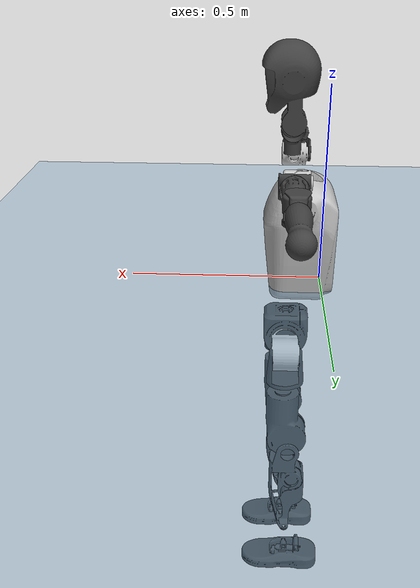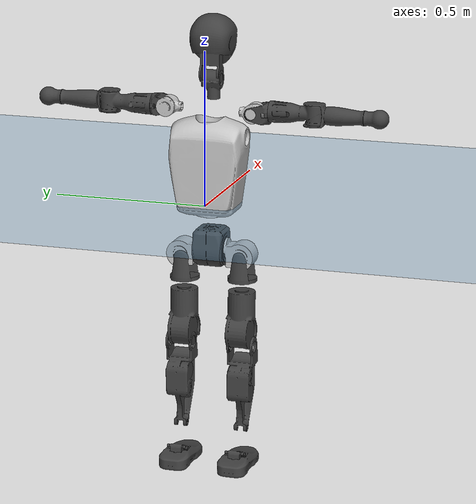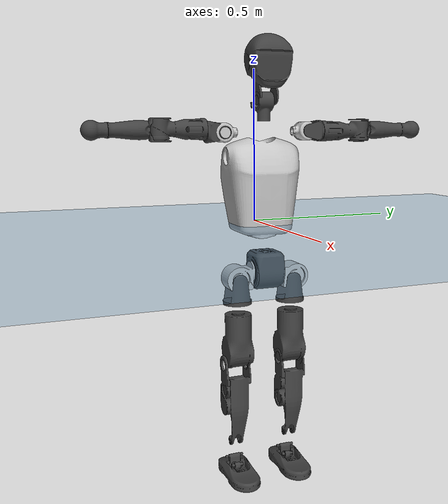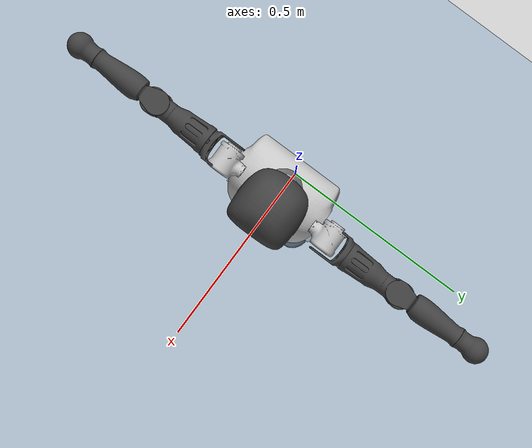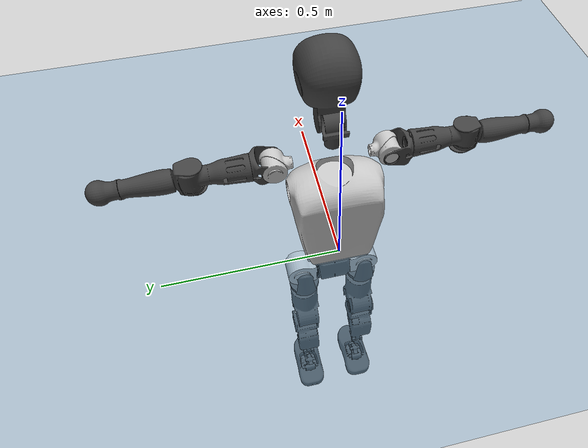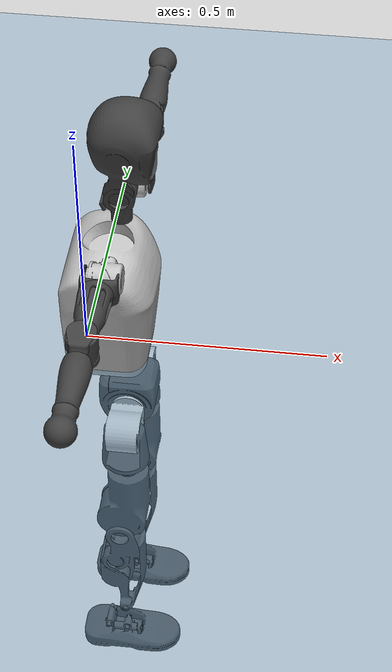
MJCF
<mujoco model="T1">
  <compiler angle="radian" assetdir="assets" balanceinertia="true" inertiafromgeom="false"/>

  <option timestep="0.005" density="1.2" viscosity="2e-05"/>

  <size nkey="1"/>

  <visual>
    <quality shadowsize="8192"/>
    <map shadowclip="0.5"/>
  </visual>

  <default>
    <default class="/">
      <joint armature="0.01" damping="0.01" frictionloss="0.1"/>
      <geom contype="0" conaffinity="0" group="1" solref="-1000 -80"/>
      <site size="0.01 0.005 0.005" group="5"/>
      <general forcelimited="true" biastype="affine" gainprm="25" biasprm="0 -25 -0.6"/>
      <default class="t1">
        <geom rgba="0.25 0.25 0.25 1"/>
        <default class="visual">
          <geom type="mesh" group="2"/>
        </default>
        <default class="collision">
          <geom group="3"/>
        </default>
        <default class="foot">
          <geom size="0.1115 0.05 0.015" type="box" condim="6" group="4" priority="1" solimp="0.015 1 0.015"/>
        </default>
        <default class="reward_collision_sphere">
          <geom group="5" rgba="1 0 0 1"/>
        </default>
      </default>
    </default>
  </default>

  <asset>
    <texture type="skybox" colorspace="auto" name="//unnamed_texture_0" builtin="gradient" rgb1="0.95 0.95 0.95" rgb2="0.95 0.95 0.95" width="100" height="600"/>
    <texture type="2d" colorspace="auto" name="texplane" builtin="checker" rgb1="0.345 0.575 0.748" rgb2="0.345 0.575 0.748" markrgb="1 1 1" width="512" height="512"/>
    <material name="MatPlane" class="/" texture="texplane" texuniform="true" texrepeat="2 2" specular="0.9"/>
    <mesh name="Trunk" class="/" file="Trunk.stl"/>
    <mesh name="H1" class="/" file="H1.stl"/>
    <mesh name="H2" class="/" file="H2.stl"/>
    <mesh name="AL1" class="/" file="AL1.stl"/>
    <mesh name="AL2" class="/" file="AL2.stl"/>
    <mesh name="AL3" class="/" file="AL3.stl"/>
    <mesh name="left_hand_link" class="/" file="left_hand_link.stl"/>
    <mesh name="AR1" class="/" file="AR1.stl"/>
    <mesh name="AR2" class="/" file="AR2.stl"/>
    <mesh name="AR3" class="/" file="AR3.stl"/>
    <mesh name="right_hand_link" class="/" file="right_hand_link.stl"/>
    <mesh name="Waist" class="/" file="Waist.stl"/>
    <mesh name="Hip_Pitch_Left" class="/" file="Hip_Pitch_Left.stl"/>
    <mesh name="Hip_Roll_Left" class="/" file="Hip_Roll_Left.stl"/>
    <mesh name="Hip_Yaw_Left" class="/" file="Hip_Yaw_Left.stl"/>
    <mesh name="Shank_Left" class="/" file="Shank_Left.stl"/>
    <mesh name="Ankle_Cross_Left" class="/" file="Ankle_Cross_Left.stl"/>
    <mesh name="left_foot_link" class="/" file="left_foot_link.stl"/>
    <mesh name="Hip_Pitch_Right" class="/" file="Hip_Pitch_Right.stl"/>
    <mesh name="Hip_Roll_Right" class="/" file="Hip_Roll_Right.stl"/>
    <mesh name="Hip_Yaw_Right" class="/" file="Hip_Yaw_Right.stl"/>
    <mesh name="Shank_Right" class="/" file="Shank_Right.stl"/>
    <mesh name="Ankle_Cross_Right" class="/" file="Ankle_Cross_Right.stl"/>
    <mesh name="right_foot_link" class="/" file="right_foot_link.stl"/>
  </asset>

  <worldbody>
    <geom name="floor" class="/" size="100 100 0.125" type="plane" group="0" material="MatPlane"/>
    <light name="toplight_shadow" class="/" pos="0 0 5" dir="0.0990148 0.0990148 -0.990148" type="directional" ambient="0.04 0.04 0.04" diffuse="0.55 0.55 0.55" specular="0.12 0.12 0.12"/>
    <light name="toplight_fill" class="/" pos="0 0 5" dir="0.0990148 0.0990148 -0.990148" type="directional" castshadow="false" ambient="0.04 0.04 0.04" diffuse="0.3 0.3 0.3" specular="0.08 0.08 0.08"/>
    <body name="trunk" childclass="t1" pos="0.00017324 0.000851216 0.00201267" quat="0.999999 0.00133197 0.000323805 -0.000974827">
      <inertial pos="0.073396 -0.000706158 0.139543" quat="0.99983 -0.0147409 -0.00787483 -0.00783443" mass="20.0111" diaginertia="0.307963 0.0521192 0.218197"/>
      <joint name="//unnamed_joint_0" type="free" armature="0" damping="0" frictionloss="0"/>
      <geom name="//unnamed_geom_1" class="visual" rgba="0.76 0.76 0.76 1" mesh="Trunk"/>
      <geom name="//unnamed_geom_2" class="collision" size="0.089474 0.119299 0.178948" pos="0.0790013 0 0.160195" type="box"/>
      <geom name="//unnamed_geom_3" class="reward_collision_sphere" size="0.137194" pos="0.0790013 0 0.133496"/>
      <geom name="//unnamed_geom_4" class="reward_collision_sphere" size="0.0178948" pos="0.0790013 0.078822 0"/>
      <geom name="//unnamed_geom_5" class="reward_collision_sphere" size="0.0178948" pos="0.0790013 -0.078822 0"/>
      <geom name="//unnamed_geom_6" class="reward_collision_sphere" size="0.0178948" pos="0.0790013 0.099223 0.240292"/>
      <geom name="//unnamed_geom_7" class="reward_collision_sphere" size="0.0178948" pos="0.0790013 -0.099223 0.240292"/>
      <site name="imu" pos="-0.0151849 0.000903961 0.0144491" size="0.0119299"/>
      <camera name="track" pos="0 -1.85463 0" quat="0.707107 0.707107 0 0" mode="trackcom"/>
      <camera name="ego_camera" pos="0.160636 0 0.560681" quat="-0.5 -0.5 0.5 0.5"/>
      <body name="H1" pos="0.0861741 -0.00103214 0.330611" quat="1 -8.99131e-05 -0.000159391 0.000393403">
        <inertial pos="-0.00275241 -0.00402145 0.0766749" quat="0.766057 -0.0128071 0.00176572 0.642643" mass="0.760696" diaginertia="0.000958419 0.000152892 0.000639021"/>
        <joint name="AAHead_yaw" pos="0 0 0" axis="0.0115717 0.000460715 0.999933" range="-1.62961 1.60632" armature="0.00824298" damping="0.0150639" frictionloss="0.0859077"/>
        <geom name="//unnamed_geom_8" class="visual" mesh="H1"/>
        <body name="H2" pos="-0.000351514 0.00816446 0.0808149" quat="1 -2.06026e-06 -0.000211678 -4.48941e-05">
          <inertial pos="0.00594448 0.00560948 0.138884" quat="0.988456 0.0976826 -0.0921624 -0.0701345" mass="1.09522" diaginertia="0.00848927 0.00147723 0.00748039"/>
          <joint name="Head_pitch" pos="0 0 0" axis="-0.0032695 -0.999991 -0.00277874" range="-1.1878 0.321695" armature="0.0108338" damping="0.0363503" frictionloss="0.132767"/>
          <geom name="//unnamed_geom_9" class="visual" mesh="H2"/>
          <geom name="//unnamed_geom_10" class="collision" size="0.095439" pos="0.0131669 0 0.146845"/>
          <geom name="//unnamed_geom_11" class="reward_collision_sphere" size="0.107369" pos="0.0263338 0 0.133496"/>
        </body>
      </body>
      <body name="AL1" pos="0.0790179 0.102103 0.298459" quat="0.999996 0.00123243 -0.00267923 -0.000195406">
        <inertial pos="0.00115864 0.0433385 -0.0020956" quat="0.5056 0.495568 -0.50493 0.493788" mass="0.908159" diaginertia="0.00549092 0.000974494 0.00133217"/>
        <joint name="Left_Shoulder_Pitch" pos="0 0 0" axis="0.0149288 0.999883 -0.00323476" range="-3.27903 1.08668" armature="0.011743" damping="0.0381436" frictionloss="0.113058"/>
        <geom name="//unnamed_geom_12" class="visual" rgba="0.76 0.76 0.76 1" mesh="AL1"/>
        <body name="AL2" pos="0.00584772 0.0444395 0.00051294" quat="1 -5.21497e-05 0.000409459 -5.5377e-06">
          <inertial pos="0.00526947 0.0291861 0.000718255" quat="0.484139 0.520297 -0.482177 0.512255" mass="0.258053" diaginertia="0.00157628 0.000236887 0.000742553"/>
          <joint name="Left_Shoulder_Roll" pos="0 0 0" axis="-0.999906 0.00922468 -0.0101568" stiffness="0.038352" range="-1.58734 1.77421" armature="0.00790476" damping="0.0148679" frictionloss="0.115763"/>
          <geom name="//unnamed_geom_13" class="visual" mesh="AL2"/>
          <body name="AL3" pos="0.00130434 0.056002 -0.00138365" quat="1 -0.000873351 0.000122797 0.000347014">
            <inertial pos="-0.00521022 0.0853083 7.8441e-05" quat="0.705065 0.709113 0.00128234 0.00642217" mass="1.94665" diaginertia="0.0503055 0.00933422 0.00287809"/>
            <joint name="Left_Elbow_Pitch" pos="0 0 0" axis="0.000997355 -0.999998 -0.00168917" range="-2.13268 2.26381" armature="0.00708407" damping="0" frictionloss="0.110675"/>
            <geom name="//unnamed_geom_14" class="visual" mesh="AL3"/>
            <geom name="//unnamed_geom_15" class="collision" size="0.0357896 0.089474" pos="0 0.0463659 0" quat="0.707105 0.707108 0 0" type="cylinder"/>
            <geom name="//unnamed_geom_16" class="reward_collision_sphere" size="0.0429475"/>
            <body name="left_hand_link" pos="-0.00144607 0.138838 0.00229031" quat="0.999994 -0.000403159 -0.00327839 -0.000370394">
              <inertial pos="0.00688109 0.101794 0.0015296" quat="0.711729 0.702426 -0.00563901 0.00279732" mass="0.55744" diaginertia="0.0347242 0.00563122 0.000857193"/>
              <joint name="Left_Elbow_Yaw" pos="0 0 0" axis="-0.00155237 -0.00247038 0.999996" stiffness="0.00434638" range="-2.46752 0.143317" armature="0.0104811" damping="0.00886287" frictionloss="0.12474"/>
              <geom name="//unnamed_geom_17" class="visual" mesh="left_hand_link"/>
              <geom name="//unnamed_geom_18" class="collision" size="0.0357896 0.104386" pos="0 0.120551 0" quat="0.707105 0.707108 0 0" type="cylinder"/>
              <geom name="//unnamed_geom_19" class="reward_collision_sphere" size="0.0596493"/>
              <geom name="//unnamed_geom_20" class="reward_collision_sphere" size="0.0417545" pos="0 0.102005 0"/>
              <geom name="//unnamed_geom_21" class="reward_collision_sphere" size="0.0417545" pos="0 0.199373 0"/>
            </body>
          </body>
        </body>
      </body>
      <body name="AR1" pos="0.0758624 -0.0925603 0.295414" quat="1 4.33035e-05 0.000412958 -0.000184285">
        <inertial pos="0.00129263 -0.0337559 -0.0014869" quat="0.50166 0.4895 -0.507195 0.501478" mass="0.965684" diaginertia="0.0057701 0.000916982 0.00131742"/>
        <joint name="Right_Shoulder_Pitch" pos="0 0 0" axis="-0.0237664 -0.999717 -0.00112767" stiffness="0.0374512" range="-1.21439 3.33019" armature="0.00893363" damping="0" frictionloss="0.122487"/>
        <geom name="//unnamed_geom_22" class="visual" rgba="0.76 0.76 0.76 1" mesh="AR1"/>
        <body name="AR2" pos="-0.00719666 -0.0455531 0.00173745" quat="0.999996 -0.00263572 0.000899855 -0.000358181">
          <inertial pos="0.00736466 -0.0330355 -0.00030088" quat="0.511869 0.488801 -0.511096 0.487693" mass="0.292406" diaginertia="0.00159705 0.00022092 0.000734919"/>
          <joint name="Right_Shoulder_Roll" pos="0 0 0" axis="-0.999978 -0.0056312 0.00349875" range="-1.72696 1.58958" armature="0.0122303" damping="0.00530518" frictionloss="0.0716234"/>
          <geom name="//unnamed_geom_23" class="visual" mesh="AR2"/>
          <body name="AR3" pos="-0.00191687 -0.0553855 0.00817918" quat="1 0.000484924 -4.14004e-05 0.000153635">
            <inertial pos="0.00188211 -0.0733965 0.000106429" quat="0.690943 0.722861 -0.00619605 0.00561679" mass="1.7244" diaginertia="0.0506996 0.00856678 0.00246061"/>
            <joint name="Right_Elbow_Pitch" pos="0 0 0" axis="-0.0244396 0.999659 -0.00925096" range="-2.16538 2.30227" armature="0.0156149" damping="0.0180525" frictionloss="0.105437"/>
            <geom name="//unnamed_geom_24" class="visual" mesh="AR3"/>
            <geom name="//unnamed_geom_25" class="collision" size="0.0357896 0.089474" pos="0 -0.0463659 0" quat="0.707105 0.707108 0 0" type="cylinder"/>
            <geom name="//unnamed_geom_26" class="reward_collision_sphere" size="0.0429475"/>
            <body name="right_hand_link" pos="-0.00121953 -0.137863 -0.00191674" quat="0.999998 0.00150673 0.00139171 -0.000548183">
              <inertial pos="0.00221134 -0.101141 -0.00505973" quat="0.706381 0.707832 0.000119063 -0.000460525" mass="0.54498" diaginertia="0.0316663 0.0057626 0.000919866"/>
              <joint name="Right_Elbow_Yaw" pos="0 0 0" axis="-0.00959322 -0.00613844 0.999935" stiffness="0.00545899" range="-0.0372929 2.39305" armature="0.00860788" damping="0.04375" frictionloss="0.0999349"/>
              <geom name="//unnamed_geom_27" class="visual" mesh="right_hand_link"/>
              <geom name="//unnamed_geom_28" class="collision" size="0.0357896 0.104386" pos="0 -0.120551 0" quat="0.707105 0.707108 0 0" type="cylinder"/>
              <geom name="//unnamed_geom_29" class="reward_collision_sphere" size="0.0596493"/>
              <geom name="//unnamed_geom_30" class="reward_collision_sphere" size="0.0417545" pos="0 -0.102005 0"/>
              <geom name="//unnamed_geom_31" class="reward_collision_sphere" size="0.0417545" pos="0 -0.199373 0"/>
            </body>
          </body>
        </body>
      </body>
      <body name="Waist" pos="0.0844444 0.00410243 -0.161198" quat="1 -0.000252982 0.000414238 0.000144282">
        <inertial pos="0.00866246 -0.0020282 0.0121449" quat="0.982737 -0.0180312 -0.182948 0.0208299" mass="4.83139" diaginertia="0.0239723 0.00388415 0.022134"/>
        <joint name="Waist" pos="0 0 0" axis="0.0250592 0.00913028 0.999644" stiffness="0.00241609" range="-1.53051 1.6804" armature="0.0127294" damping="0" frictionloss="0.0896486"/>
        <geom name="//unnamed_geom_32" class="visual" mesh="Waist"/>
        <body name="Hip_Pitch_Left" pos="0.00231997 0.0985182 -0.000891248" quat="1 -0.00012671 -5.70314e-05 -0.00037058">
          <inertial pos="-8.62152e-05 -0.00635859 -0.0264765" quat="0.973709 0.226749 0.0217308 0.0020804" mass="1.7688" diaginertia="0.00717011 0.000949595 0.00543945"/>
          <joint name="Left_Hip_Pitch" pos="0 0 0" axis="0.00219325 0.999146 0.0412571" stiffness="0.0316178" range="-1.82499 1.43509" armature="0.0113382" damping="0.0323019" frictionloss="0.111512"/>
          <geom name="//unnamed_geom_33" class="visual" rgba="0.76 0.76 0.76 1" mesh="Hip_Pitch_Left"/>
          <body name="Hip_Roll_Left" pos="-0.000722523 -0.00833557 -0.0313767" quat="0.999992 -0.00202188 0.00134564 -0.00310537">
            <inertial pos="0.00561261 0.000520247 -0.0697826" quat="0.709369 -0.00194793 -0.00590566 0.70481" mass="0.695437" diaginertia="0.00698814 0.00115924 0.00238944"/>
            <joint name="Left_Hip_Roll" pos="0 0 0" axis="-0.999431 -0.0163959 -0.0294617" range="-1.56782 0.178794" armature="0.0122879" damping="0" frictionloss="0.107004"/>
            <geom name="//unnamed_geom_34" class="visual" mesh="Hip_Roll_Left"/>
            <geom name="//unnamed_geom_35" class="reward_collision_sphere" size="0.0656143"/>
            <body name="Hip_Yaw_Left" pos="0.000659193 0.00251402 -0.10934" quat="1 -0.000437075 4.6988e-05 -7.8798e-05">
              <inertial pos="-0.00770918 0.00164817 -0.119083" quat="0.674474 -0.0345861 -0.0209465 0.737191" mass="3.94357" diaginertia="0.103464 0.0180681 0.0117675"/>
              <joint name="Left_Hip_Yaw" pos="0 0 0" axis="0.000398003 0.012092 -0.999927" range="-0.940055 1.00221" armature="0.0118087" damping="0.00529213" frictionloss="0.132004"/>
              <geom name="//unnamed_geom_36" class="visual" mesh="Hip_Yaw_Left"/>
              <geom name="//unnamed_geom_37" class="collision" size="0.0596493 0.095439" type="cylinder"/>
              <body name="Shank_Left" pos="-0.0187916 0.00560612 -0.176179" quat="1 0.000597104 -0.000510686 0.000325211">
                <inertial pos="-0.00802402 0.00405228 -0.168328" quat="0.996157 -0.00401675 -0.0418634 0.0768272" mass="2.82431" diaginertia="0.134095 0.0228406 0.00827529"/>
                <joint name="Left_Knee_Pitch" pos="0 0 0" axis="0.000883551 0.999989 -0.00450061" range="0.00838676 2.35576" armature="0.00884447" damping="0.0188821" frictionloss="0.109075"/>
                <geom name="//unnamed_geom_38" class="visual" mesh="Shank_Left"/>
                <geom name="//unnamed_geom_39" class="collision" size="0.0596493 0.089474" pos="0 0 -0.160195" type="cylinder"/>
                <geom name="//unnamed_geom_40" class="reward_collision_sphere" size="0.0775442"/>
                <body name="Ankle_Cross_Left" pos="-0.0025231 -0.00308984 -0.36946" quat="0.999996 2.28805e-05 -0.000397145 -0.00276222">
                  <inertial pos="-0.00435369 0.0073661 -0.0128271" quat="0.431187 0.54615 0.55686 0.453547" mass="0.120751" diaginertia="0.000111576 1.62146e-05 4.54699e-05"/>
                  <joint name="Left_Ankle_Pitch" pos="0 0 0" axis="0.000677267 0.999928 0.0119447" range="-0.840505 0.370466" armature="0.0113802" damping="0" frictionloss="0.131853"/>
                  <geom name="//unnamed_geom_41" class="visual" mesh="Ankle_Cross_Left"/>
                  <body name="left_foot_link" pos="0.00419441 0.00696426 -0.0159901" quat="1 9.31821e-05 0.00022149 0.000269772">
                    <inertial pos="-0.00558563 -0.00179196 -0.0198681" quat="-0.00135869 0.625576 0.0054589 0.780143" mass="1.1688" diaginertia="0.0101954 0.00164336 0.0090244"/>
                    <joint name="Left_Ankle_Roll" pos="0 0 0" axis="-0.999996 -0.00101399 0.00261074" range="-0.462726 0.43183" armature="0.015413" damping="0.0116791" frictionloss="0.11506"/>
                    <geom name="//unnamed_geom_42" class="visual" mesh="left_foot_link"/>
                    <geom name="left_foot" class="foot" size="0.0835738 0.0686246 0.0195687" pos="0.0131669 0 -0.0200243"/>
                    <geom name="//unnamed_geom_44" class="reward_collision_sphere" size="0.0620353" pos="0.0131669 0 -0.0200243"/>
                    <geom name="//unnamed_geom_45" class="reward_collision_sphere" size="0.0357896" pos="0.125085 -0.0213283 -0.0200243"/>
                    <geom name="//unnamed_geom_46" class="reward_collision_sphere" size="0.0357896" pos="-0.0921681 -0.0213283 -0.0200243"/>
                    <site name="left_foot" class="foot" pos="0.0131669 0 -0.0200243" size="0.0119299"/>
                  </body>
                </body>
              </body>
            </body>
          </body>
        </body>
        <body name="Hip_Pitch_Right" pos="0.00391521 -0.102913 0.00229251" quat="0.999993 0.00106939 0.00248616 0.00264198">
          <inertial pos="-0.00144252 0.0153798 -0.0232248" quat="0.972699 -0.230879 0.0230066 -0.00478275" mass="1.8213" diaginertia="0.00771734 0.00110631 0.00564581"/>
          <joint name="Right_Hip_Pitch" pos="0 0 0" axis="-0.000333042 -0.999982 -0.00606766" range="-1.50572 1.76752" armature="0.0123276" damping="0.0130458" frictionloss="0.0782201"/>
          <geom name="//unnamed_geom_47" class="visual" rgba="0.76 0.76 0.76 1" mesh="Hip_Pitch_Right"/>
          <body name="Hip_Roll_Right" pos="0.00212649 -0.000793769 -0.0273505" quat="1 0.000147733 -0.000858732 -0.000272987">
            <inertial pos="0.00732391 -0.00761212 -0.064657" quat="0.707012 -0.00705136 -0.00591677 0.707141" mass="0.632945" diaginertia="0.00657043 0.0010302 0.00216492"/>
            <joint name="Right_Hip_Roll" pos="0 0 0" axis="-0.999903 0.0108868 -0.00873181" stiffness="0.00100354" range="-0.240821 1.55912" armature="0.0117155" damping="0.0135184" frictionloss="0.132573"/>
            <geom name="//unnamed_geom_48" class="visual" mesh="Hip_Roll_Right"/>
            <geom name="//unnamed_geom_49" class="reward_collision_sphere" size="0.0656143"/>
            <body name="Hip_Yaw_Right" pos="0.00108276 0.00204193 -0.112702" quat="1 0.000129831 0.000116817 0.000514828">
              <inertial pos="-0.0115263 0.00238496 -0.117281" quat="0.714693 -0.030874 -0.0334859 0.697954" mass="3.83792" diaginertia="0.0982715 0.0176535 0.0107238"/>
              <joint name="Right_Hip_Yaw" pos="0 0 0" axis="-0.00399959 0.013222 -0.999905" range="-1.05942 1.0926" armature="0.0165897" damping="0" frictionloss="0.0822128"/>
              <geom name="//unnamed_geom_50" class="visual" mesh="Hip_Yaw_Right"/>
              <geom name="//unnamed_geom_51" class="collision" size="0.0596493 0.095439" type="cylinder"/>
              <body name="Shank_Right" pos="-0.0172405 -0.0068257 -0.179216" quat="0.999996 -0.000421022 -0.00107017 0.00254165">
                <inertial pos="-0.00797076 -0.00372863 -0.170695" quat="0.999632 0.00331734 -0.00904013 -0.0253553" mass="3.18321" diaginertia="0.141857 0.0232871 0.00746911"/>
                <joint name="Right_Knee_Pitch" pos="0 0 0" axis="-0.0218484 -0.999715 0.00961949" range="-2.43423 0.085569" armature="0.0107484" damping="0" frictionloss="0.11654"/>
                <geom name="//unnamed_geom_52" class="visual" mesh="Shank_Right"/>
                <geom name="//unnamed_geom_53" class="collision" size="0.0596493 0.089474" pos="0 0 -0.160195" type="cylinder"/>
                <geom name="//unnamed_geom_54" class="reward_collision_sphere" size="0.0775442"/>
                <body name="Ankle_Cross_Right" pos="-0.000716898 0.00456703 -0.373643" quat="0.999991 0.00333337 -0.00176207 -0.00176457">
                  <inertial pos="-0.00546534 -0.000363131 -0.0144338" quat="0.447466 0.552329 0.548633 0.440123" mass="0.126405" diaginertia="0.00011671 1.75494e-05 5.07092e-05"/>
                  <joint name="Right_Ankle_Pitch" pos="0 0 0" axis="0.00623063 -0.99998 -0.00053369" range="-0.25672 0.902314" armature="0.0132237" damping="0.000331408" frictionloss="0.105818"/>
                  <geom name="//unnamed_geom_55" class="visual" mesh="Ankle_Cross_Right"/>
                  <body name="right_foot_link" pos="0.000214045 0.00516114 -0.0155173" quat="1 -0.000239366 -8.68807e-05 0.00072766">
                    <inertial pos="-0.00252805 0.000962464 -0.00771679" quat="0.000401835 0.619907 0.00830209 0.784632" mass="1.14899" diaginertia="0.0109504 0.00164859 0.00957764"/>
                    <joint name="Right_Ankle_Roll" pos="0 0 0" axis="-0.999881 -0.00761977 -0.0133789" stiffness="0.00735511" range="-0.6062 0.417408" armature="0.0089629" damping="0.00212639" frictionloss="0.137133"/>
                    <geom name="//unnamed_geom_56" class="visual" mesh="right_foot_link"/>
                    <geom name="right_foot" class="foot" size="0.0969957 0.0662933 0.0184413" pos="0.0131669 0 -0.0200243"/>
                    <geom name="//unnamed_geom_58" class="reward_collision_sphere" size="0.0477195"/>
                    <geom name="//unnamed_geom_59" class="reward_collision_sphere" size="0.0357896" pos="0.0131669 0 -0.0200243"/>
                    <geom name="//unnamed_geom_60" class="reward_collision_sphere" size="0.0357896" pos="0.125085 0.0213283 -0.0200243"/>
                    <geom name="//unnamed_geom_61" class="reward_collision_sphere" size="0.0357896" pos="-0.0921681 0.0213283 -0.0200243"/>
                    <site name="right_foot" class="foot" pos="0.0131669 0 -0.0200243" size="0.0119299"/>
                  </body>
                </body>
              </body>
            </body>
          </body>
        </body>
      </body>
    </body>
  </worldbody>

  <contact>
    <pair class="/" geom1="floor" geom2="left_foot" name="//unnamed_contact_0"/>
    <pair class="/" geom1="floor" geom2="right_foot" name="//unnamed_contact_1"/>
  </contact>

  <actuator>
    <general name="AAHead_yaw" class="/" joint="AAHead_yaw" forcerange="-8.891 8.891" gainprm="31.001" biasprm="0 -31.001 -0.694955"/>
    <general name="Head_pitch" class="/" joint="Head_pitch" forcerange="-7.49171 7.49171" gainprm="31.001" biasprm="0 -31.001 -0.694955"/>
    <general name="Left_Shoulder_Pitch" class="/" joint="Left_Shoulder_Pitch" forcerange="-19.2573 19.2573" gainprm="31.001" biasprm="0 -31.001 -0.694955"/>
    <general name="Left_Shoulder_Roll" class="/" joint="Left_Shoulder_Roll" forcerange="-17.3507 17.3507" gainprm="31.001" biasprm="0 -31.001 -0.694955"/>
    <general name="Left_Elbow_Pitch" class="/" joint="Left_Elbow_Pitch" forcerange="-20.1554 20.1554" gainprm="31.001" biasprm="0 -31.001 -0.694955"/>
    <general name="Left_Elbow_Yaw" class="/" joint="Left_Elbow_Yaw" forcerange="-22.9776 22.9776" gainprm="31.001" biasprm="0 -31.001 -0.694955"/>
    <general name="Right_Shoulder_Pitch" class="/" joint="Right_Shoulder_Pitch" forcerange="-21.6429 21.6429" gainprm="31.001" biasprm="0 -31.001 -0.694955"/>
    <general name="Right_Shoulder_Roll" class="/" joint="Right_Shoulder_Roll" forcerange="-20.9412 20.9412" gainprm="31.001" biasprm="0 -31.001 -0.694955"/>
    <general name="Right_Elbow_Pitch" class="/" joint="Right_Elbow_Pitch" forcerange="-23.3269 23.3269" gainprm="31.001" biasprm="0 -31.001 -0.694955"/>
    <general name="Right_Elbow_Yaw" class="/" joint="Right_Elbow_Yaw" forcerange="-19.7354 19.7354" gainprm="31.001" biasprm="0 -31.001 -0.694955"/>
    <general name="Waist" class="/" joint="Waist" forcerange="-42.826 42.826" gainprm="31.001" biasprm="0 -31.001 -0.694955"/>
    <general name="Left_Hip_Pitch" class="/" joint="Left_Hip_Pitch" forcerange="-51.8367 51.8367" gainprm="31.001" biasprm="0 -31.001 -0.694955"/>
    <general name="Left_Hip_Roll" class="/" joint="Left_Hip_Roll" forcerange="-34.1796 34.1796" gainprm="31.001" biasprm="0 -31.001 -0.694955"/>
    <general name="Left_Hip_Yaw" class="/" joint="Left_Hip_Yaw" forcerange="-33.1866 33.1866" gainprm="31.001" biasprm="0 -31.001 -0.694955"/>
    <general name="Left_Knee_Pitch" class="/" joint="Left_Knee_Pitch" forcerange="-83.0765 83.0765" gainprm="31.001" biasprm="0 -31.001 -0.694955"/>
    <general name="Left_Ankle_Pitch" class="/" joint="Left_Ankle_Pitch" forcerange="-17.1894 17.1894" gainprm="31.001" biasprm="0 -31.001 -0.694955"/>
    <general name="Left_Ankle_Roll" class="/" joint="Left_Ankle_Roll" forcerange="-23.413 23.413" gainprm="31.001" biasprm="0 -31.001 -0.694955"/>
    <general name="Right_Hip_Pitch" class="/" joint="Right_Hip_Pitch" forcerange="-51.839 51.839" gainprm="31.001" biasprm="0 -31.001 -0.694955"/>
    <general name="Right_Hip_Roll" class="/" joint="Right_Hip_Roll" forcerange="-41.6881 41.6881" gainprm="31.001" biasprm="0 -31.001 -0.694955"/>
    <general name="Right_Hip_Yaw" class="/" joint="Right_Hip_Yaw" forcerange="-27.4899 27.4899" gainprm="31.001" biasprm="0 -31.001 -0.694955"/>
    <general name="Right_Knee_Pitch" class="/" joint="Right_Knee_Pitch" forcerange="-75.0724 75.0724" gainprm="31.001" biasprm="0 -31.001 -0.694955"/>
    <general name="Right_Ankle_Pitch" class="/" joint="Right_Ankle_Pitch" forcerange="-24.4387 24.4387" gainprm="31.001" biasprm="0 -31.001 -0.694955"/>
    <general name="Right_Ankle_Roll" class="/" joint="Right_Ankle_Roll" forcerange="-18.0204 18.0204" gainprm="31.001" biasprm="0 -31.001 -0.694955"/>
  </actuator>

  <sensor>
    <gyro site="imu" name="imu_angular_velocity"/>
    <velocimeter site="imu" name="imu_linear_velocity"/>
    <framelinvel objtype="site" objname="left_foot" name="left_foot_global_linear_velocity"/>
    <framelinvel objtype="site" objname="right_foot" name="right_foot_global_linear_velocity"/>
  </sensor>

  <keyframe>
    <key name="home" qpos="0 0 0.6385 1 0 0 0 0 0 0 1.4 0 -0.4 0 -1.4 0 0.4 0 -0.4 0 0 0.8 -0.4 0 0.4 0 0 -0.8 0.4 0"/>
  </keyframe>
</mujoco>
